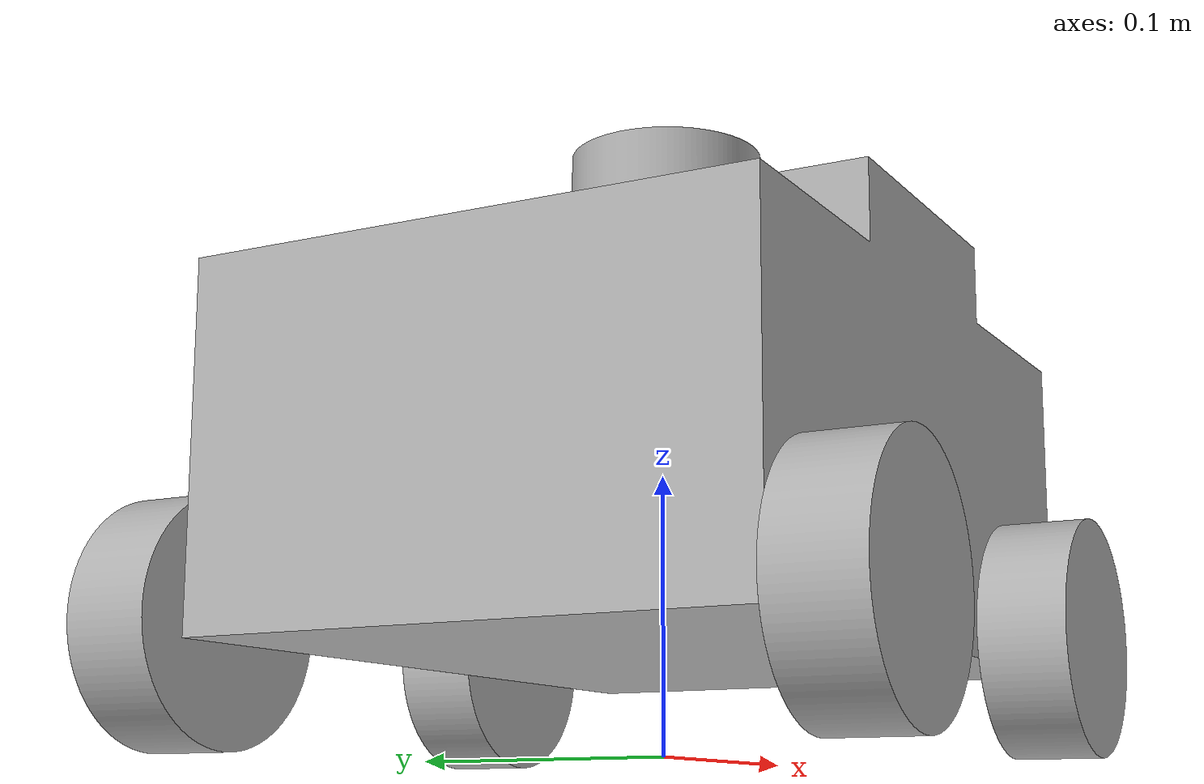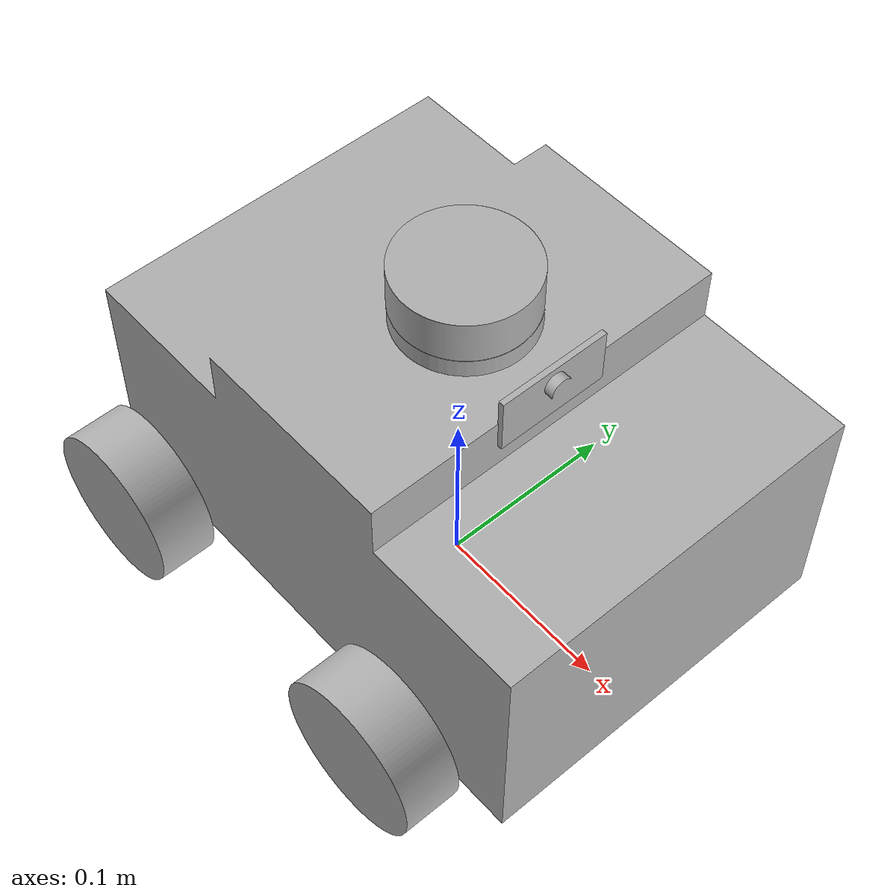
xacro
<?xml version="1.0" ?>
<robot name="dekutamr" xmlns:xacro="http://www.ros.org/wiki/xacro">
  <xacro:include filename="$(find dekutamr_description)/urdf/materials.xacro" />
  <xacro:include filename="$(find dekutamr_description)/urdf/dekutamr.trans" />
  <xacro:include filename="$(find dekutamr_description)/urdf/dekutamr.gazebo" />

  <!-- Base footprint at origin -->
  <link name="base_footprint"/>

  <joint name="base_footprint_to_base_link" type="fixed">
    <parent link="base_footprint"/>
    <child link="base_link"/>
    <origin xyz="-0.007 0 0" rpy="0 0 0"/>
  </joint>

  <link name="base_link">
    <inertial>
      <origin xyz="0 0 0.10323362010897062" rpy="0 0 0"/>
      <mass value="59.838037523886456"/>
      <inertia ixx="0.297515" iyy="0.462372" izz="0.562002" ixy="0.0" iyz="0.0" ixz="-3e-06"/>
    </inertial>
    <visual>
      <origin xyz="0 0 0" rpy="0 0 0"/>
      <geometry>
        <mesh filename="file://$(find dekutamr_description)/meshes/base_link.stl" scale="0.001 0.001 0.001"/>
      </geometry>
      <material name="silver"/>
    </visual>
    <collision>
      <origin xyz="0 0 0" rpy="0 0 0"/>
      <geometry>
        <mesh filename="file://$(find dekutamr_description)/meshes/base_link.stl" scale="0.001 0.001 0.001"/>
      </geometry>
    </collision>
  </link>

  <!-- Front Right Wheel -->
  <link name="frwheel_link_1">
    <inertial>
      <origin xyz="0.003 -0.01050464503450281 0.0" rpy="0 0 0"/>
      <mass value="1.3803967660818925"/>
      <inertia ixx="0.000734" iyy="0.001247" izz="0.000734" ixy="0" iyz="0" ixz="0"/>
    </inertial>
    <visual>
      <origin xyz="-0.21039 0.109 -0.0425" rpy="0 0 0"/>
      <geometry>
        <mesh filename="file://$(find dekutamr_description)/meshes/frwheel_link_1.stl" scale="0.001 0.001 0.001"/>
      </geometry>
      <material name="silver"/>
    </visual>
    <collision>
      <origin xyz="-0.21039 0.109 -0.0425" rpy="0 0 0"/>
      <geometry>
        <mesh filename="file://$(find dekutamr_description)/meshes/frwheel_link_1.stl" scale="0.001 0.001 0.001"/>
      </geometry>
    </collision>
  </link>

  <!-- Front Left Wheel -->
  <link name="flwheel_link_1">
    <inertial>
      <origin xyz="0.003 0.010504645034502769 0.0" rpy="0 0 0"/>
      <mass value="1.3803967660818925"/>
      <inertia ixx="0.000734" iyy="0.001247" izz="0.000734" ixy="0" iyz="0" ixz="0"/>
    </inertial>
    <visual>
      <origin xyz="-0.21039 -0.109 -0.0425" rpy="0 0 0"/>
      <geometry>
        <mesh filename="file://$(find dekutamr_description)/meshes/flwheel_link_1.stl" scale="0.001 0.001 0.001"/>
      </geometry>
      <material name="silver"/>
    </visual>
    <collision>
      <origin xyz="-0.21039 -0.109 -0.0425" rpy="0 0 0"/>
      <geometry>
        <mesh filename="file://$(find dekutamr_description)/meshes/flwheel_link_1.stl" scale="0.001 0.001 0.001"/>
      </geometry>
    </collision>
  </link>

  <!-- Back Left Wheel -->
  <link name="blwheel_link_1">
    <inertial>
      <origin xyz="0.003 0.010504645034502769 0.0" rpy="0 0 0"/>
      <mass value="1.3803967660818925"/>
      <inertia ixx="0.000734" iyy="0.001247" izz="0.000734" ixy="0" iyz="0" ixz="0"/>
    </inertial>
    <visual>
      <origin xyz="-0.0395 -0.109 -0.0425" rpy="0 0 0"/>
      <geometry>
        <mesh filename="file://$(find dekutamr_description)/meshes/blwheel_link_1.stl" scale="0.001 0.001 0.001"/>
      </geometry>
      <material name="silver"/>
    </visual>
    <collision>
      <origin xyz="-0.0395 -0.109 -0.0425" rpy="0 0 0"/>
      <geometry>
        <mesh filename="file://$(find dekutamr_description)/meshes/blwheel_link_1.stl" scale="0.001 0.001 0.001"/>
      </geometry>
    </collision>
  </link>

  <!-- Back Right Wheel -->
  <link name="brwheel_link_1">
    <inertial>
      <origin xyz="0.003 -0.01050464503450281 0.0" rpy="0 0 0"/>
      <mass value="1.3803967660818925"/>
      <inertia ixx="0.000734" iyy="0.001247" izz="0.000734" ixy="0" iyz="0" ixz="0"/>
    </inertial>
    <visual>
      <origin xyz="-0.0395 0.109 -0.0425" rpy="0 0 0"/>
      <geometry>
        <mesh filename="file://$(find dekutamr_description)/meshes/brwheel_link_1.stl" scale="0.001 0.001 0.001"/>
      </geometry>
      <material name="silver"/>
    </visual>
    <collision>
      <origin xyz="-0.0395 0.109 -0.0425" rpy="0 0 0"/>
      <geometry>
        <mesh filename="file://$(find dekutamr_description)/meshes/brwheel_link_1.stl" scale="0.001 0.001 0.001"/>
      </geometry>
    </collision>
  </link>

  <!-- Joints remain unchanged -->
  <joint name="fr_joint" type="continuous">
    <origin xyz="0.08009 -0.109 0.0425" rpy="0 0 0"/>
    <parent link="base_link"/>
    <child link="frwheel_link_1"/>
    <axis xyz="0 -1 0"/>
  </joint>
  <joint name="fl_joint" type="continuous">
    <origin xyz="0.08009 0.109 0.0425" rpy="0 0 0"/>
    <parent link="base_link"/>
    <child link="flwheel_link_1"/>
    <axis xyz="0 1 0"/>
  </joint>
  <joint name="bl_joint" type="continuous">
    <origin xyz="-0.1048 0.109 0.0425" rpy="0 0 0"/>
    <parent link="base_link"/>
    <child link="blwheel_link_1"/>
    <axis xyz="0 1 0"/>
  </joint>
  <joint name="br_joint" type="continuous">
    <origin xyz="-0.1048 -0.109 0.0425" rpy="0 0 0"/>
    <parent link="base_link"/>
    <child link="brwheel_link_1"/>
    <axis xyz="0 -1 0"/>
  </joint>

  <!-- Lidar Link -->
  <link name="lidar_llink_1">
    <inertial>
      <origin xyz="0.003 0 0.011555" rpy="0 0 0"/>
      <mass value="0.69816"/>
      <inertia ixx="0.000245" iyy="0.000245" izz="0.000428" ixy="0" iyz="0" ixz="0"/>
    </inertial>
    <visual>
      <origin xyz="-0.1373 0 -0.19709" rpy="0 0 0"/>
      <geometry>
        <mesh filename="file://$(find dekutamr_description)/meshes/lidar_llink_1.stl" scale="0.001 0.001 0.001"/>
      </geometry>
      <material name="silver"/>
    </visual>
    <collision>
      <origin xyz="-0.1373 0 -0.19709" rpy="0 0 0"/>
      <geometry>
        <mesh filename="file://$(find dekutamr_description)/meshes/lidar_llink_1.stl" scale="0.001 0.001 0.001"/>
      </geometry>
    </collision>
  </link>

  <!-- Camera Link -->
  <link name="camera_link_1">
    <inertial>
      <origin xyz="0.003 0 0.000541" rpy="0 0 0"/>
      <mass value="0.04676"/>
      <inertia ixx="1.6e-05" iyy="3e-06" izz="1.3e-05" ixy="0" iyz="0" ixz="0"/>
    </inertial>
    <visual>
      <origin xyz="-0.19194 0 -0.18709" rpy="0 0 0"/>
      <geometry>
        <mesh filename="file://$(find dekutamr_description)/meshes/camera_link_1.stl" scale="0.001 0.001 0.001"/>
      </geometry>
      <material name="silver"/>
    </visual>
    <collision>
      <origin xyz="-0.19194 0 -0.18709" rpy="0 0 0"/>
      <geometry>
        <mesh filename="file://$(find dekutamr_description)/meshes/camera_link_1.stl" scale="0.001 0.001 0.001"/>
      </geometry>
    </collision>
  </link>

  <!-- Sensor joints remain unchanged -->
  <joint name="lidar_joint" type="fixed">
    <origin xyz="0.007 0 0.19709" rpy="0 0 0"/>
    <parent link="base_link"/>
    <child link="lidar_llink_1"/>
  </joint>
  <joint name="camera_joint" type="fixed">
    <origin xyz="0.06164 0 0.18709" rpy="0 0 0"/>
    <parent link="base_link"/>
    <child link="camera_link_1"/>
  </joint>
</robot>

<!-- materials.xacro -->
<robot name="dekutamr" xmlns:xacro="http://www.ros.org/wiki/xacro" >

  <material name="silver">
    <color rgba="0.700 0.700 0.700 1.000"/>
  </material>
  <material name="blue">
    <color rgba="0.000 0.000 1.000 1.000"/>
  </material>
  <material name="green">
    <color rgba="0.000 1.000 0.000 1.000"/>
  </material>
</robot>

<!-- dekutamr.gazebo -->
<robot name="dekutamr" xmlns:xacro="http://www.ros.org/wiki/xacro" >

<xacro:property name="body_color" value="Gazebo/Silver" />

<gazebo>
  <plugin name="control" filename="libgazebo_ros_control.so"/>
</gazebo>
<gazebo reference="base_link">
  <material>${body_color}</material>
  <mu1>0.2</mu1>
  <mu2>0.2</mu2>
  <self_collide>true</self_collide>
  <gravity>true</gravity>
</gazebo>

<gazebo reference="frwheel_link_1">
  <material>${body_color}</material>
  <mu1>0.2</mu1>
  <mu2>0.2</mu2>
  <self_collide>true</self_collide>
</gazebo>

<gazebo reference="flwheel_link_1">
  <material>${body_color}</material>
  <mu1>0.2</mu1>
  <mu2>0.2</mu2>
  <self_collide>true</self_collide>
</gazebo>

<gazebo reference="blwheel_link_1">
  <material>${body_color}</material>
  <mu1>0.2</mu1>
  <mu2>0.2</mu2>
  <self_collide>true</self_collide>
</gazebo>

<gazebo reference="brwheel_link_1">
  <material>${body_color}</material>
  <mu1>0.2</mu1>
  <mu2>0.2</mu2>
  <self_collide>true</self_collide>
</gazebo>

<gazebo reference="lidar_llink_1">
  <material>${body_color}</material>
  <mu1>0.2</mu1>
  <mu2>0.2</mu2>
  <self_collide>true</self_collide>
</gazebo>

<gazebo reference="camera_link_1">
  <material>${body_color}</material>
  <mu1>0.2</mu1>
  <mu2>0.2</mu2>
  <self_collide>true</self_collide>
</gazebo>

</robot>
